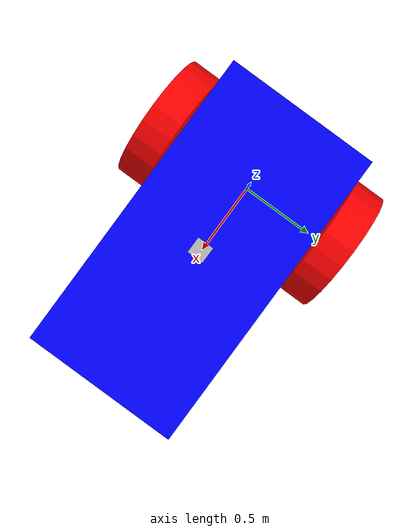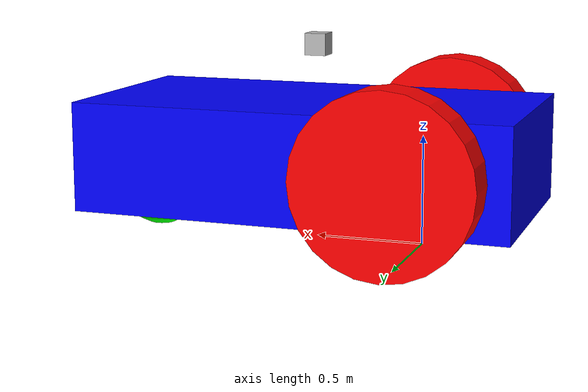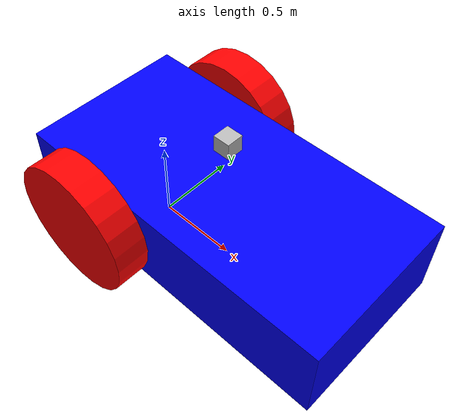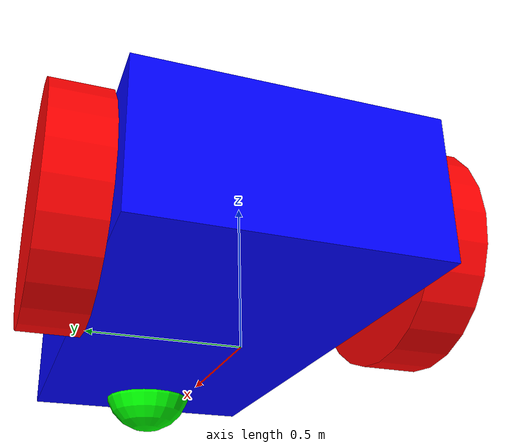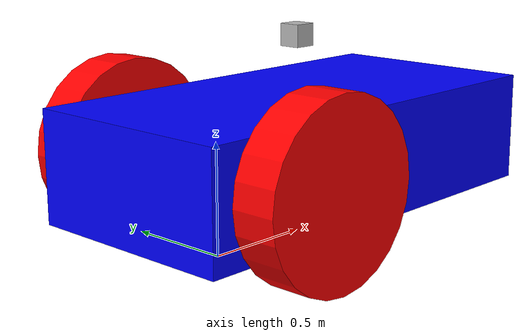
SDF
<?xml version="1.0"?>
<sdf version="1.10">
    <model name='vehicle_blue' canonical_link='Base_Link'>
        <plugin filename="gz-sim-joint-state-publisher-system"
            name="gz::sim::systems::JointStatePublisher">
            <topic>joint_states</topic>
            <joint_name>right_wheel_joint</joint_name> <!--motor
            direita-->
            <joint_name>left_wheel_joint</joint_name> <!--motor
            esquerda-->
        </plugin>
        <!-- https://gazebosim.org/api/sim/8/classgz_1_1sim_1_1systems_1_1PosePublisher.html -->
        <plugin filename="gz-sim-pose-publisher-system" name="gz::sim::systems::PosePublisher">
            <publish_model_pose>true</publish_model_pose>
            <!-- Disable everything else -->
            <publish_link_pose>false</publish_link_pose>
            <publish_visual_pose>false</publish_visual_pose>
            <publish_collision_pose>false</publish_collision_pose>
            <publish_sensor_pose>false</publish_sensor_pose>
            <publish_nested_model_pose>false</publish_nested_model_pose>
            <update_frequency>10</update_frequency>
        </plugin>
        <plugin
            filename="gz-sim-diff-drive-system"
            name="gz::sim::systems::DiffDrive">
            <left_joint>left_wheel_joint</left_joint>
            <right_joint>right_wheel_joint</right_joint>
            <wheel_separation>1.2</wheel_separation>
            <wheel_radius>0.4</wheel_radius>
            <odom_publish_frequency>20</odom_publish_frequency>
            <topic>cmd_vel</topic>
        </plugin>
        <plugin filename="gz-sim-imu-system"
            name="gz::sim::systems::Imu">
        </plugin>
        <!--Base_Link-->
        <link name='Base_Link'>

            <pose relative_to='__model__'>0.5 0 0.4 0 0 0</pose>
            <inertial> <!--inertial
            properties of the link mass, inertia matix-->
                <mass>1.14395</mass>
                <inertia>
                    <ixx>0.095329</ixx>
                    <ixy>0</ixy>
                    <ixz>0</ixz>
                    <iyy>0.381317</iyy>
                    <iyz>0</iyz>
                    <izz>0.476646</izz>
                </inertia>
            </inertial>
            <visual name='visual'>
                <geometry>
                    <box>
                        <size>2.0 1.0 0.5</size>
                    </box>
                </geometry>
                <!--Color
            of the link-->
                <material>
                    <ambient>0.0 0.0 1.0 1</ambient>
                    <diffuse>0.0 0.0 1.0 1</diffuse>
                    <specular>0.0 0.0 1.0 1</specular>
                </material>
            </visual>
            <collision name='collision'>
                <geometry>
                    <box>
                        <size>2.0 1.0 0.5</size>
                    </box>
                </geometry>
            </collision>
        </link>

        <!--Left
    wheel-->
        <link name='left_wheel'>
            <pose relative_to="Base_Link">-0.5 0.6 0 -1.5707 0 0</pose> <!--angles
        are in radian-->
            <inertial>
                <mass>1</mass>
                <inertia>
                    <ixx>0.043333</ixx>
                    <ixy>0</ixy>
                    <ixz>0</ixz>
                    <iyy>0.043333</iyy>
                    <iyz>0</iyz>
                    <izz>0.08</izz>
                </inertia>
            </inertial>
            <visual name='visual'>
                <geometry>
                    <cylinder>
                        <radius>0.4</radius>
                        <length>0.2</length>
                    </cylinder>
                </geometry>
                <material>
                    <ambient>1.0 0.0 0.0 1</ambient>
                    <diffuse>1.0 0.0 0.0 1</diffuse>
                    <specular>1.0 0.0 0.0 1</specular>
                </material>
            </visual>
            <collision name='collision'>
                <geometry>
                    <cylinder>
                        <radius>0.4</radius>
                        <length>0.2</length>
                    </cylinder>
                </geometry>
            </collision>
        </link>

        <!--The
    same as left wheel but with different position-->
        <link name='right_wheel'>
            <pose relative_to="Base_Link">-0.5 -0.6 0 -1.5707 0 0</pose> <!--angles
        are in radian-->
            <inertial>
                <mass>1</mass>
                <inertia>
                    <ixx>0.043333</ixx>
                    <ixy>0</ixy>
                    <ixz>0</ixz>
                    <iyy>0.043333</iyy>
                    <iyz>0</iyz>
                    <izz>0.08</izz>
                </inertia>
            </inertial>
            <visual name='visual'>
                <geometry>
                    <cylinder>
                        <radius>0.4</radius>
                        <length>0.2</length>
                    </cylinder>
                </geometry>
                <material>
                    <ambient>1.0 0.0 0.0 1</ambient>
                    <diffuse>1.0 0.0 0.0 1</diffuse>
                    <specular>1.0 0.0 0.0 1</specular>
                </material>
            </visual>
            <collision name='collision'>
                <geometry>
                    <cylinder>
                        <radius>0.4</radius>
                        <length>0.2</length>
                    </cylinder>
                </geometry>
            </collision>
        </link>

        <!--arbitrary
    frame-->
        <frame name="caster_frame" attached_to='Base_Link'>
            <pose>0.8 0 -0.2 0 0 0</pose>
        </frame>

        <!--caster
    wheel-->
        <link name='caster'>
            <pose relative_to='caster_frame' />
            <inertial>
                <mass>1</mass>
                <inertia>
                    <ixx>0.016</ixx>
                    <ixy>0</ixy>
                    <ixz>0</ixz>
                    <iyy>0.016</iyy>
                    <iyz>0</iyz>
                    <izz>0.016</izz>
                </inertia>
            </inertial>
            <visual name='visual'>
                <geometry>
                    <sphere>
                        <radius>0.2</radius>
                    </sphere>
                </geometry>
                <material>
                    <ambient>0.0 1 0.0 1</ambient>
                    <diffuse>0.0 1 0.0 1</diffuse>
                    <specular>0.0 1 0.0 1</specular>
                </material>
            </visual>
            <collision name='collision'>
                <geometry>
                    <sphere>
                        <radius>0.2</radius>
                    </sphere>
                </geometry>
            </collision>
        </link>

        <link name="IMU_MTI_680g_Link">
            <pose relative_to='Base_Link'>
                2 0 0 0 0 0
            </pose>
            <sensor name="imu_sensor" type="imu">
                <localization>ENU</localization>
                <gz_frame_id>IMU_MTI_680g_Link</gz_frame_id>
                <always_on>1</always_on>
                <update_rate>100</update_rate>
                <visualize>true</visualize>
                <topic>imu</topic>
               <imu>
                    <angular_velocity>
                        <x>
                            <noise type="gaussian">
                                <mean>0.0</mean>
                                <stddev>2e-3</stddev>
                            </noise>
                        </x>
                        <y>
                            <noise type="gaussian">
                                <mean>0.0</mean>
                                <stddev>2e-3</stddev>
                            </noise>
                        </y>
                        <z>
                            <noise type="gaussian">
                                <mean>0.0</mean>
                                <stddev>3e-3</stddev>
                            </noise>
                        </z>
                    </angular_velocity>
                    <linear_acceleration>
                        <x>
                            <noise type="gaussian">
                                <mean>0.0</mean>
                                <stddev>1.7e-2</stddev>
                            </noise>
                        </x>
                        <y>
                            <noise type="gaussian">
                                <mean>0.0</mean>
                                <stddev>1.7e-2</stddev>
                            </noise>
                        </y>
                        <z>
                            <noise type="gaussian">
                                <mean>0.0</mean>
                                <stddev>1.7e-2</stddev>
                            </noise>
                        </z>
                    </linear_acceleration>
                </imu>
            </sensor>
        </link>

        <link name="lidar_link">
            <pose relative_to='Base_Link'>
                0 0 0.5 0 0 0
            </pose>

            <inertial>
                <mass>0.1</mass>
                <inertia>
                    <ixx>0.000166667</ixx>
                    <iyy>0.000166667</iyy>
                    <izz>0.000166667</izz>
                </inertia>
            </inertial>
            <collision name="collision">
                <geometry>
                    <box>
                        <size>0.1 0.1 0.1</size>
                    </box>
                </geometry>
            </collision>
            <visual name="visual">
                <geometry>
                    <box>
                        <size>0.1 0.1 0.1</size>
                    </box>
                </geometry>
            </visual>
            <sensor name='gpu_lidar' type='gpu_lidar'>
                <pose relative_to='lidar_link'>
                    0 0 0 0 0 0
                </pose>
                <topic>scan</topic>
                <gz_frame_id>lidar_link</gz_frame_id>
                <update_rate>10</update_rate>
                <lidar>
                    <scan>
                        <horizontal>
                            <samples>640</samples>
                            <resolution>1</resolution>
                            <min_angle>-1.396263</min_angle>
                            <max_angle>1.396263</max_angle>
                        </horizontal>
                        <vertical>
                            <samples>1</samples>
                            <resolution>1</resolution>
                            <min_angle>0.0</min_angle>
                            <max_angle>0.0</max_angle>
                        </vertical>
                    </scan>
                    <range>
                        <min>0.08</min>
                        <max>10.0</max>
                        <resolution>0.01</resolution>
                    </range>
                </lidar>
                <visualize>true</visualize>
            </sensor>
        </link>

        <joint name='lidar_joint' type='fixed'>
            <parent>Base_Link</parent>
            <child>lidar_link</child>
        </joint>

        <joint name="imu_joint" type="fixed">
            <parent>Base_Link</parent>
            <child>IMU_MTI_680g_Link</child>
        </joint>

        <!--left
    wheel joint-->
        <joint name='left_wheel_joint' type='revolute'>
            <pose relative_to='left_wheel' />
            <parent>Base_Link</parent>
            <child>left_wheel</child>
            <axis>
                <xyz expressed_in='__model__'>0 1 0</xyz> <!--can
            be descired to any frame or even arbitrary frames-->
                <limit>
                    <lower>-1.79769e+308</lower>    <!--negative
                infinity-->
                    <upper>1.79769e+308</upper>     <!--positive
                infinity-->
                </limit>
            </axis>
        </joint>

        <!--right
    wheel joint-->
        <joint name='right_wheel_joint' type='revolute'>
            <pose relative_to='right_wheel' />
            <parent>Base_Link</parent>
            <child>right_wheel</child>
            <axis>
                <xyz expressed_in='__model__'>0 1 0</xyz>
                <limit>
                    <lower>-1.79769e+308</lower>    <!--negative
                infinity-->
                    <upper>1.79769e+308</upper>     <!--positive
                infinity-->
                </limit>
            </axis>
        </joint>

        <!--caster
    wheel joint--> <!--pose
    defult value is the child-->
        <joint name='caster_wheel' type='ball'>
            <parent>Base_Link</parent>
            <child>caster</child>
        </joint>
    </model>
</sdf>
